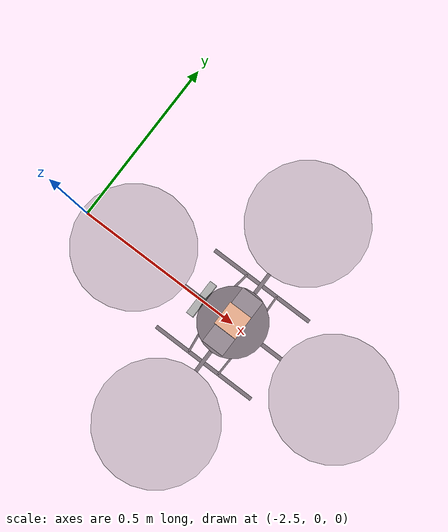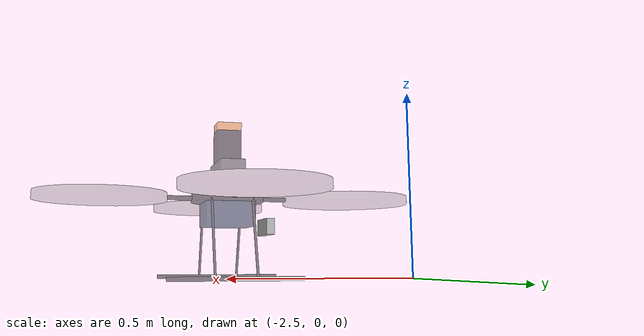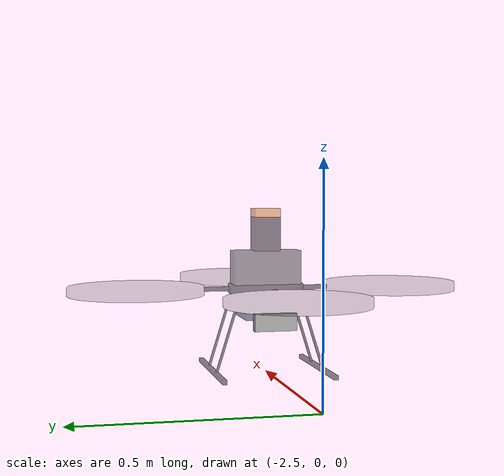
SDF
<?xml version='1.0'?>
<sdf version='1.4'>
	<model name="croc_flyer_v1">
		<static>false</static>
		<pose>-2 0 0 0 0 0</pose>

		<!-- MAIN ROUND PLATFORM -->
    	<link name='center'>
    		<pose>0 0 0.2 0 0 0</pose>
			<inertial>
		        <mass>0.2</mass>
		    </inertial>
			<collision name='collision'>
		    	<geometry>
		    		<cylinder>
		    			<radius>0.09</radius>
						<length>0.02</length>
		      		</cylinder>
		    	</geometry>
      		</collision>

			<visual name='visual'>
				<transparency>0.0</transparency>
				<material>
					<ambient>0 0 0 0.5</ambient>
					<diffuse>0 0 0 0.5</diffuse>
					<specular>0 0 0 0.5</specular>
					<emissive>0 0 0 0.5</emissive>
				</material>
				<geometry>
					<cylinder>
						<radius>0.09</radius>
						<length>0.02</length>
					</cylinder>
				</geometry>
			</visual>
 		</link>

	<link name='center_top'>
    		<pose>0 0 0.25 0 0 0</pose>
			<inertial>
		        <mass>0.2</mass>
		    </inertial>
			<collision name='collision'>
		    	<geometry>
		    		<box>
						<size>0.06 0.16 0.08</size>
					</box>
		    	</geometry>
      		</collision>

			<visual name='visual'>
				<material>
					<ambient>0.2 0.2 0.2 0.5</ambient>
					<diffuse>0.2 0.2 0.2 0.5</diffuse>
					<specular>0.2 0.2 0.2 0.5</specular>
					<emissive>0.2 0.2 0.2 0.5</emissive>
				</material>
				<geometry>
		    		<box>
						<size>0.06 0.16 0.08</size>
					</box>
				</geometry>
			</visual>
 		</link>

	<link name='center_bottom'>
    		<pose>0 0 0.16 0 0 0</pose>
			<inertial>
		        <mass>0.7</mass>
		    </inertial>
			<collision name='collision'>
		    	<geometry>
		    		<box>
						<size>0.12 0.12 0.06</size>
					</box>
		    	</geometry>
      		</collision>

			<visual name='visual'>
				<material>
					<ambient>0 0.1 0.2 0.5</ambient>
					<diffuse>0 0.1 0.2 0.5</diffuse>
					<specular>0 0.1 0.2 0.5</specular>
					<emissive>0 0.1 0.2 0.5</emissive>
				</material>
				<geometry>
		    		<box>
						<size>0.12 0.12 0.06</size>
					</box>
				</geometry>
			</visual>
 		</link>

		<joint name="center_top" type="revolute">
			<child>center_top</child>
			<parent>center</parent>
			<axis>
				<xyz>1 0 0</xyz>
				<limit>
					<upper>0</upper>
					<lower>0</lower>
				</limit>
			</axis>
		</joint>

		<joint name="center_bottom" type="revolute">
			<child>center_bottom</child>
			<parent>center</parent>
			<axis>
				<xyz>1 0 0</xyz>
				<limit>
					<upper>0</upper>
					<lower>0</lower>
				</limit>
			</axis>
		</joint>

		<!-- ARM N-S -->
		<link name='arm_one'>
    		<pose>0 0 0.2 0 0 0</pose>
			<inertial>
		        <mass>0.2</mass>
		    </inertial>
			<collision name='collision'>
		    	<geometry>
		    		<box>
		    			<size>0.62 0.01 0.01</size>
		      		</box>
		    	</geometry>
      		</collision>

			<visual name='visual'>
				<material>
					<ambient>0 0 0 0.5</ambient>
					<diffuse>0 0 0 0.5</diffuse>
					<specular>0 0 0 0.5</specular>
					<emissive>0 0 0 0.5</emissive>
				</material>
				<geometry>
		    		<box>
		    			<size>0.62 0.01 0.01</size>
		      		</box>
		    	</geometry>
			</visual>
 		</link>

		<!-- ARM E-W -->
		<link name='arm_two'>
    		<pose>0 0 0.2 0 0 0</pose>
			<inertial>
		        <mass>0.2</mass>
		    </inertial>
			<collision name='collision'>
		    	<geometry>
		    		<box>
		    			<size>0.01 0.62 0.01</size>
		      		</box>
		    	</geometry>
      		</collision>

			<visual name='visual'>
				<material>
					<ambient>0 0 0 0.5</ambient>
					<diffuse>0 0 0 0.5</diffuse>
					<specular>0 0 0 0.5</specular>
					<emissive>0 0 0 0.5</emissive>
				</material>
				<geometry>
		    		<box>
		    			<size>0.01 0.62 0.01</size>
		      		</box>
		    	</geometry>
			</visual>
 		</link>

		<!-- PROPELLERS -->
		<link name='north_platform'>
    		<pose>-0.31 0 0.2 0 0 0</pose>
			<inertial>
		        <mass>0.15</mass>
		    </inertial>
			<collision name='collision'>
		    	<geometry>
		    		<cylinder>
		    			<radius>0.16</radius>
						<length>0.02</length>
		      		</cylinder>
		    	</geometry>
      		</collision>

			<visual name='visual'>
				<transparency>0.9</transparency>
				<material>
					<ambient>0 0 0 0.5</ambient>
					<diffuse>0 0 0 0.5</diffuse>
					<specular>0 0 0 0.5</specular>
					<emissive>0 0 0 0.5</emissive>
				</material>

				<geometry>
					<cylinder>
						<radius>0.16</radius>
						<length>0.02</length>
					</cylinder>
				</geometry>
			</visual>
 		</link>

		<link name='south_platform'>
    		<pose>0.31 0 0.2 0 0 0</pose>
			<inertial>
		        <mass>0.15</mass>
		    </inertial>
			<collision name='collision'>
		    	<geometry>
		    		<cylinder>
		    			<radius>0.16</radius>
						<length>0.02</length>
		      		</cylinder>
		    	</geometry>
      		</collision>

			<visual name='visual'>
				<transparency>0.9</transparency>
				<material>
					<ambient>0 0 0 0.5</ambient>
					<diffuse>0 0 0 0.5</diffuse>
					<specular>0 0 0 0.5</specular>
					<emissive>0 0 0 0.5</emissive>
				</material>

				<geometry>
					<cylinder>
						<radius>0.16</radius>
						<length>0.02</length>
					</cylinder>
				</geometry>
			</visual>
 		</link>

		<link name='east_platform'>
    		<pose>0 0.31 0.2 0 0 0</pose>
			<inertial>
		        <mass>0.15</mass>
		    </inertial>
			<collision name='collision'>
		    	<geometry>
		    		<cylinder>
		    			<radius>0.16</radius>
						<length>0.02</length>
		      		</cylinder>
		    	</geometry>
      		</collision>

			<visual name='visual'>
				<transparency>0.9</transparency>
				<material>
					<ambient>0 0 0 0.5</ambient>
					<diffuse>0 0 0 0.5</diffuse>
					<specular>0 0 0 0.5</specular>
					<emissive>0 0 0 0.5</emissive>
				</material>

				<geometry>
					<cylinder>
						<radius>0.16</radius>
						<length>0.02</length>
					</cylinder>
				</geometry>
			</visual>
 		</link>

		<link name='west_platform'>
    		<pose>0 -0.31 0.2 0 0 0</pose>
			<inertial>
		        <mass>0.15</mass>
		    </inertial>
			<collision name='collision'>
		    	<geometry>
		    		<cylinder>
		    			<radius>0.16</radius>
						<length>0.02</length>
		      		</cylinder>
		    	</geometry>
      		</collision>

			<visual name='visual'>
				<transparency>0.9</transparency>
				<material>
					<ambient>0 0 0 0.5</ambient>
					<diffuse>0 0 0 0.5</diffuse>
					<specular>0 0 0 0.5</specular>
					<emissive>0 0 0 0.5</emissive>
				</material>

				<geometry>
					<cylinder>
						<radius>0.16</radius>
						<length>0.02</length>
					</cylinder>
				</geometry>
			</visual>
 		</link>

		<!-- JOINTS -->

		<joint name="north_joint" type="revolute">
			<child>north_platform</child>
			<parent>arm_one</parent>
			<axis>
				<xyz>1 0 0</xyz>
				<limit>
					<upper>0</upper>
					<lower>0</lower>
				</limit>
			</axis>
		</joint>

		<joint name="south_joint" type="revolute">
			<child>south_platform</child>
			<parent>arm_one</parent>
			<axis>
				<xyz>1 0 0</xyz>
				<limit>
					<upper>0</upper>
					<lower>0</lower>
				</limit>
			</axis>
		</joint>

		<joint name="east_joint" type="revolute">
			<child>east_platform</child>
			<parent>arm_two</parent>
			<axis>
				<xyz>0 1 0</xyz>
				<limit>
					<upper>0</upper>
					<lower>0</lower>
				</limit>
			</axis>
		</joint>

		<joint name="west_joint" type="revolute">
			<child>west_platform</child>
			<parent>arm_two</parent>
			<axis>
				<xyz>0 1 0</xyz>
				<limit>
					<upper>0</upper>
					<lower>0</lower>
				</limit>
			</axis>
		</joint>

		<joint name="arm_joint" type="revolute">
			<child>arm_one</child>
			<parent>arm_two</parent>
			<axis>
				<xyz>0 0 1</xyz>
				<limit>
					<upper>0</upper>
					<lower>0</lower>
				</limit>
			</axis>
		</joint>

		<joint name="center_joint_one" type="revolute">
			<child>arm_one</child>
			<parent>center</parent>
			<axis>
				<xyz>0 0 1</xyz>
				<limit>
					<upper>0</upper>
					<lower>0</lower>
				</limit>
			</axis>
		</joint>

		<joint name="center_joint_two" type="revolute">
			<child>arm_two</child>
			<parent>center</parent>
			<axis>
				<xyz>0 0 1</xyz>
				<limit>
					<upper>0</upper>
					<lower>0</lower>
				</limit>
			</axis>
		</joint>

	<!-- LEGS -->

		<link name='left_leg_one'>
    		<pose>0.05 -0.1 0.1 -0.3 0 0</pose>
			<inertial>
		        <mass>0.01</mass>
		    </inertial>
			<collision name='collision'>
		    	<geometry>
		    		<box>
		    			<size>0.005 0.005 0.201</size>
		      		</box>
		    	</geometry>
      		</collision>

			<visual name='visual'>
				<material>
					<ambient>0 0 0 0.5</ambient>
					<diffuse>0 0 0 0.5</diffuse>
					<specular>0 0 0 0.5</specular>
					<emissive>0 0 0 0.5</emissive>
				</material>
				<geometry>
		    		<box>
		    			<size>0.005 0.005 0.201</size>
		      		</box>
		    	</geometry>
			</visual>
 		</link>
		<link name='left_leg_two'>
    		<pose>-0.05 -0.1 0.1 -0.3 0 0</pose>
			<inertial>
		        <mass>0.01</mass>
		    </inertial>
			<collision name='collision'>
		    	<geometry>
		    		<box>
		    			<size>0.005 0.005 0.201</size>
		      		</box>
		    	</geometry>
      		</collision>

			<visual name='visual'>
				<material>
					<ambient>0 0 0 0.5</ambient>
					<diffuse>0 0 0 0.5</diffuse>
					<specular>0 0 0 0.5</specular>
					<emissive>0 0 0 0.5</emissive>
				</material>
				<geometry>
		    		<box>
		    			<size>0.005 0.005 0.201</size>
		      		</box>
		    	</geometry>
			</visual>
 		</link>
		<link name='left_row'>
    		<pose>0.0 -0.13 0.005 0 0 0</pose>
			<inertial>
		        <mass>0.01</mass>
		    </inertial>
			<collision name='collision'>
		    	<geometry>
		    		<box>
		    			<size>0.32 0.01 0.01</size>
		      		</box>
		    	</geometry>
      		</collision>

			<visual name='visual'>
				<material>
					<ambient>0 0 0 0.5</ambient>
					<diffuse>0 0 0 0.5</diffuse>
					<specular>0 0 0 0.5</specular>
					<emissive>0 0 0 0.5</emissive>
				</material>
				<geometry>
		    		<box>
		    			<size>0.32 0.01 0.01</size>
		      		</box>
		    	</geometry>
			</visual>
 		</link>

	<link name='right_leg_one'>
    		<pose>0.05 0.1 0.1 0.3 0 0</pose>
			<inertial>
		        <mass>0.01</mass>
		    </inertial>
			<collision name='collision'>
		    	<geometry>
		    		<box>
		    			<size>0.005 0.005 0.201</size>
		      		</box>
		    	</geometry>
      		</collision>

			<visual name='visual'>
				<material>
					<ambient>0 0 0 0.5</ambient>
					<diffuse>0 0 0 0.5</diffuse>
					<specular>0 0 0 0.5</specular>
					<emissive>0 0 0 0.5</emissive>
				</material>
				<geometry>
		    		<box>
		    			<size>0.005 0.005 0.201</size>
		      		</box>
		    	</geometry>
			</visual>
 		</link>
	<link name='right_leg_two'>
    		<pose>-0.05 0.1 0.1 0.3 0 0</pose>
			<inertial>
		        <mass>0.01</mass>
		    </inertial>
			<collision name='collision'>
		    	<geometry>
		    		<box>
		    			<size>0.005 0.005 0.201</size>
		      		</box>
		    	</geometry>
      		</collision>

			<visual name='visual'>
				<material>
					<ambient>0 0 0 0.5</ambient>
					<diffuse>0 0 0 0.5</diffuse>
					<specular>0 0 0 0.5</specular>
					<emissive>0 0 0 0.5</emissive>
				</material>
				<geometry>
		    		<box>
		    			<size>0.005 0.005 0.201</size>
		      		</box>
		    	</geometry>
			</visual>
 		</link>

	<link name='right_row'>
    		<pose>0.0 0.13 0.005 0 0 0</pose>
			<inertial>
		        <mass>0.01</mass>
		    </inertial>
			<collision name='collision'>
		    	<geometry>
		    		<box>
		    			<size>0.32 0.01 0.01</size>
		      		</box>
		    	</geometry>
      		</collision>

			<visual name='visual'>
				<material>
					<ambient>0 0 0 0.5</ambient>
					<diffuse>0 0 0 0.5</diffuse>
					<specular>0 0 0 0.5</specular>
					<emissive>0 0 0 0.5</emissive>
				</material>
				<geometry>
		    		<box>
		    			<size>0.32 0.01 0.01</size>
		      		</box>
		    	</geometry>
			</visual>
 		</link>

	<joint name="left_leg_center_one" type="revolute">
			<child>left_leg_one</child>
			<parent>center</parent>
			<axis>
				<xyz>0 0 1</xyz>
				<limit>
					<upper>0</upper>
					<lower>0</lower>
				</limit>
			</axis>
		</joint>

	<joint name="left_leg_center_two" type="revolute">
			<child>left_leg_two</child>
			<parent>center</parent>
			<axis>
				<xyz>0 0 1</xyz>
				<limit>
					<upper>0</upper>
					<lower>0</lower>
				</limit>
			</axis>
		</joint>

	<joint name="left_leg_row_one" type="revolute">
			<child>left_row</child>
			<parent>left_leg_one</parent>
			<axis>
				<xyz>0 0 1</xyz>
				<limit>
					<upper>0</upper>
					<lower>0</lower>
				</limit>
			</axis>
		</joint>

	<joint name="left_leg_row_two" type="revolute">
			<child>left_row</child>
			<parent>left_leg_two</parent>
			<axis>
				<xyz>0 0 1</xyz>
				<limit>
					<upper>0</upper>
					<lower>0</lower>
				</limit>
			</axis>
		</joint>

	<joint name="right_leg_center_one" type="revolute">
			<child>right_leg_one</child>
			<parent>center</parent>
			<axis>
				<xyz>0 0 1</xyz>
				<limit>
					<upper>0</upper>
					<lower>0</lower>
				</limit>
			</axis>
		</joint>

	<joint name="right_leg_center_two" type="revolute">
			<child>right_leg_two</child>
			<parent>center</parent>
			<axis>
				<xyz>0 0 1</xyz>
				<limit>
					<upper>0</upper>
					<lower>0</lower>
				</limit>
			</axis>
		</joint>

<joint name="right_leg_row_one" type="revolute">
			<child>right_row</child>
			<parent>right_leg_one</parent>
			<axis>
				<xyz>0 0 1</xyz>
				<limit>
					<upper>0</upper>
					<lower>0</lower>
				</limit>
			</axis>
		</joint>

	<joint name="right_leg_row_two" type="revolute">
			<child>right_row</child>
			<parent>right_leg_two</parent>
			<axis>
				<xyz>0 0 1</xyz>
				<limit>
					<upper>0</upper>
					<lower>0</lower>
				</limit>
			</axis>
		</joint>

	<!-- HOKUYO -->
    <link name='lidar'>
		<pose>0 0 0.34 0 0 1.57</pose>
	  <inertial>
        <mass>0.25</mass>
      </inertial>
		<collision name='collision'>
	    	<geometry>
				<box>
	    			<size>0.06 0.06 0.1</size>
	      		</box>
	    	</geometry>
  		</collision>

		<visual name='visual'>
				<pose>0 0 -0.01 0 0 1.57</pose>
				<material>
					<ambient>0 0 0 0.5</ambient>
					<diffuse>0 0 0 0.5</diffuse>
					<specular>0 0 0 0.5</specular>
					<emissive>0 0 0 0.5</emissive>
				</material>
			<geometry>
				<box>
	    			<size>0.06 0.06 0.08</size>
	      		</box>
	    	</geometry>
		</visual>

		<visual name='visual_red'>
			<pose>0 0 0.04 0 0 1.57</pose>
				<material>
					<ambient>0.9 0.5 0.15 0.5</ambient>
					<diffuse>0.9 0.5 0.15 0.5</diffuse>
					<specular>0.9 0.5 0.15 0.5</specular>
					<emissive>0.9 0.5 0.15 0.5</emissive>
				</material>
			<geometry>
				<box>
	    			<size>0.06 0.06 0.02</size>
	      		</box>
	    	</geometry>
		</visual>

		<sensor name="laser" type="ray">
			<pose>0 0 0.12 0 0 0</pose>
			<ray>
			  <scan>
				<horizontal>
				  <samples>1040</samples>
				  <resolution>1</resolution>
				  <min_angle>-2.26889</min_angle>
				  <max_angle>2.268899</max_angle>
				</horizontal>
			  </scan>
			  <range>
				<min>0.08</min>
				<max>20</max>
				<resolution>1</resolution>
			  </range>
			</ray>
			<always_on>1</always_on>
			<update_rate>40</update_rate>
			<visualize>true</visualize>
		</sensor>
	</link>

	<joint name="lidar_joint" type="revolute">
	  <child>lidar</child>
	  <parent>center_top</parent>
	  <axis>
		<xyz>0 0 1</xyz>
		<limit>
		  <upper>0</upper>
		  <lower>0</lower>
		</limit>
	  </axis>
	</joint>

<!-- CAMERA -->
	<link name='camera_row'>
	  <pose>-0.1 0 0.13 0 0 3.1415</pose>
      <inertial>
		<mass>0.05</mass>
      </inertial>
      <collision name='collision'>
        <geometry>
          <box>
	    	 <size>0.02 0.1 0.04</size>
	      </box>
        </geometry>
      </collision>
	  <visual name='visual'>
        <geometry>
		  <box>
	    	 <size>0.02 0.1 0.04</size>
	      </box>
		</geometry>
      </visual>
     <sensor name="camera_sensor" type="camera">
		<always_on>true</always_on>
		<pose>0.1 0 0 0 0 0</pose>
        <topic>/mike/robot_camera</topic>
		<camera name="mike_camera">
			<horizontal_fov>2.09</horizontal_fov>
            <image>
				<width>640</width>
				<height>480</height>
				<format>R8G8B8</format>
			</image>
			<clip>
				<near>0.01</near>
				<far>40</far>
			</clip>
		</camera>
  		<plugin name="ros_based_plugin" filename="libros_camera_plugin.so"/>
      </sensor>
    </link>

	<joint name="camera_joint" type="revolute">
	  <child>camera_row</child>
	  <parent>center</parent>
	  <axis>
		<xyz>0 0 1</xyz>
		<limit>
		  <upper>0</upper>
		  <lower>0</lower>
		</limit>
	  </axis>
	</joint>

   <plugin name="ros_flyer_plugin" filename="libros_flyer_plugin.so"/>
   <plugin name="ros_px4flow_plugin" filename="libros_px4flow_plugin.so"/>
   <plugin name="ros_lidar_plugin" filename="libros_lidar_plugin.so"/>

  </model>

</sdf>
